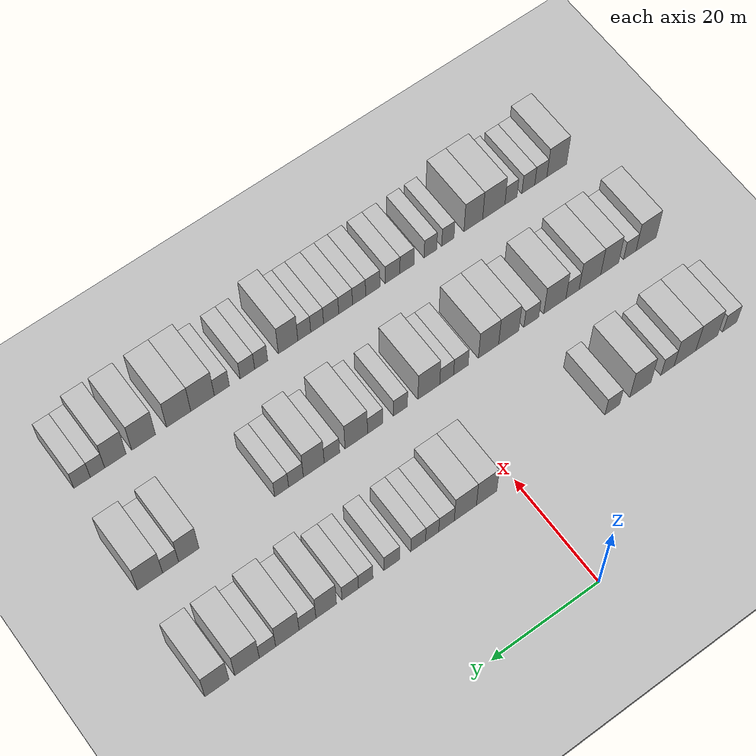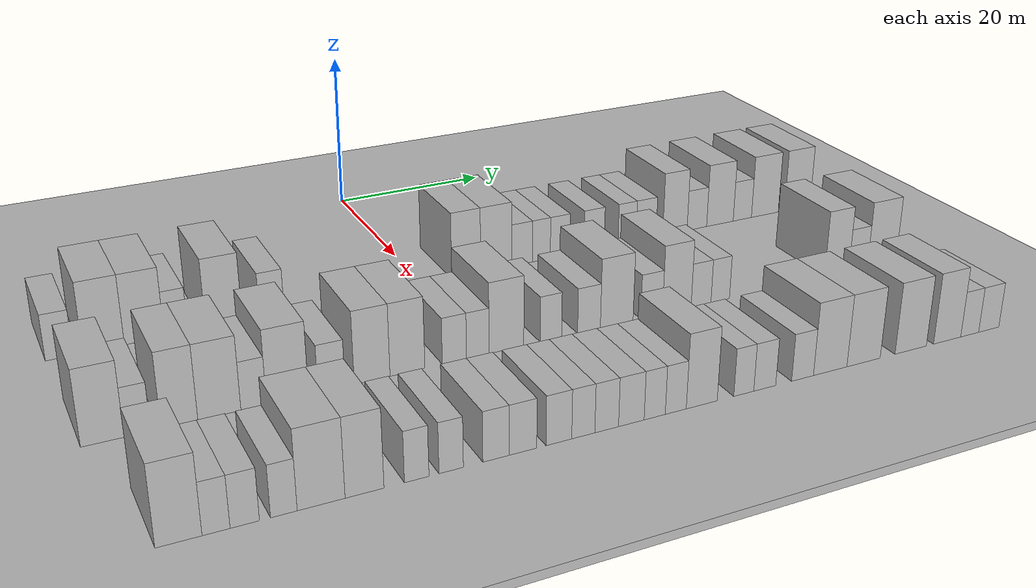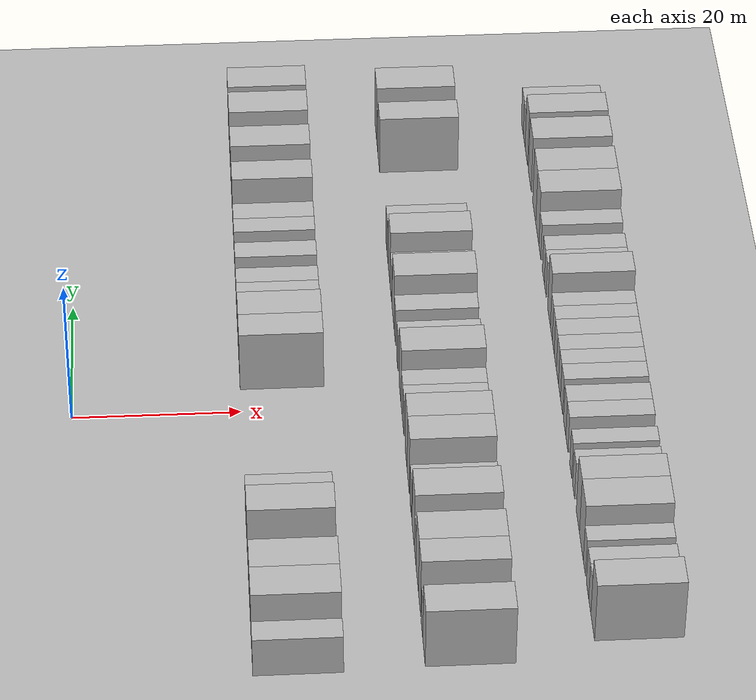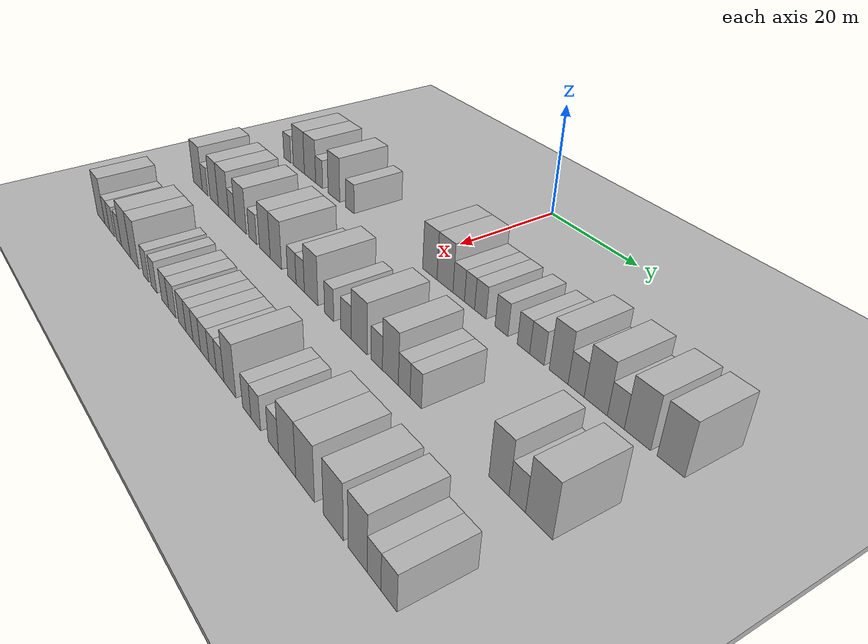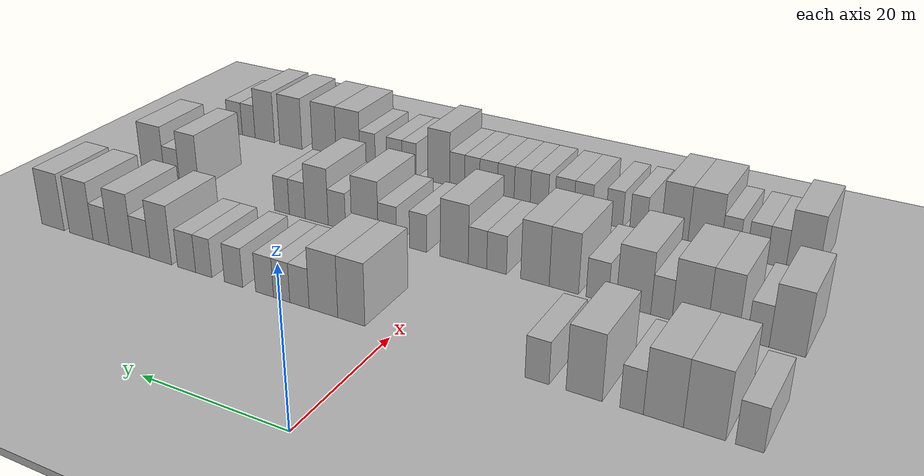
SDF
<sdf version="1.6">
 <world name="default">
  <include><name>ground_plane_1</name><uri>model://HANNAS_ground_plane</uri></include>
  <include>
   <name>ground_plane_2</name>
   <uri>model://HANNAS_ground_plane</uri>
   <pose>100 0 0  0 0 0</pose>
  </include>
  <model name="building_51">
   <static>1</static>
   <pose>25.0000 -42.3913 0 0.000000 0.000000 0.000000</pose>
   <link name="link">
    <pose>0 0 3.00 0 0 0</pose>
    <collision name="collision"><geometry><box><size>10.0000 2.9207 6.0000</size></box></geometry></collision>
    <visual name="visual">
     <cast_shadows>0</cast_shadows>
     <geometry><box><size>10.0000 2.9207 6.0000</size></box></geometry>
     <material>
      <script>
       <uri>model://HANNAS_wall/materials/scripts</uri>
       <uri>model://HANNAS_wall/materials/textures</uri>
       <name>vrc/HANNAS_wall</name>
      </script>
     </material>
    </visual>
   </link>
  </model>
  <model name="building_52">
   <static>1</static>
   <pose>25.0000 -37.7059 0 0.000000 0.000000 0.000000</pose>
   <link name="link">
    <pose>0 0 4.50 0 0 0</pose>
    <collision name="collision"><geometry><box><size>10.0000 4.4499 9.0000</size></box></geometry></collision>
    <visual name="visual">
     <cast_shadows>0</cast_shadows>
     <geometry><box><size>10.0000 4.4499 9.0000</size></box></geometry>
     <material>
      <script>
       <uri>model://HANNAS_wall/materials/scripts</uri>
       <uri>model://HANNAS_wall/materials/textures</uri>
       <name>vrc/HANNAS_wall</name>
      </script>
     </material>
    </visual>
   </link>
  </model>
  <model name="building_53">
   <static>1</static>
   <pose>25.0000 -33.2970 0 0.000000 0.000000 0.000000</pose>
   <link name="link">
    <pose>0 0 4.50 0 0 0</pose>
    <collision name="collision"><geometry><box><size>10.0000 4.3680 9.0000</size></box></geometry></collision>
    <visual name="visual">
     <cast_shadows>0</cast_shadows>
     <geometry><box><size>10.0000 4.3680 9.0000</size></box></geometry>
     <material>
      <script>
       <uri>model://HANNAS_wall/materials/scripts</uri>
       <uri>model://HANNAS_wall/materials/textures</uri>
       <name>vrc/HANNAS_wall</name>
      </script>
     </material>
    </visual>
   </link>
  </model>
  <model name="building_54">
   <static>1</static>
   <pose>25.0000 -29.8048 0 0.000000 0.000000 0.000000</pose>
   <link name="link">
    <pose>0 0 3.00 0 0 0</pose>
    <collision name="collision"><geometry><box><size>10.0000 2.6163 6.0000</size></box></geometry></collision>
    <visual name="visual">
     <cast_shadows>0</cast_shadows>
     <geometry><box><size>10.0000 2.6163 6.0000</size></box></geometry>
     <material>
      <script>
       <uri>model://HANNAS_wall/materials/scripts</uri>
       <uri>model://HANNAS_wall/materials/textures</uri>
       <name>vrc/HANNAS_wall</name>
      </script>
     </material>
    </visual>
   </link>
  </model>
  <model name="building_55">
   <static>1</static>
   <pose>25.0000 -24.4021 0 0.000000 0.000000 0.000000</pose>
   <link name="link">
    <pose>0 0 4.50 0 0 0</pose>
    <collision name="collision"><geometry><box><size>10.0000 4.1892 9.0000</size></box></geometry></collision>
    <visual name="visual">
     <cast_shadows>0</cast_shadows>
     <geometry><box><size>10.0000 4.1892 9.0000</size></box></geometry>
     <material>
      <script>
       <uri>model://HANNAS_wall/materials/scripts</uri>
       <uri>model://HANNAS_wall/materials/textures</uri>
       <name>vrc/HANNAS_wall</name>
      </script>
     </material>
    </visual>
   </link>
  </model>
  <model name="building_56">
   <static>1</static>
   <pose>25.0000 -18.8573 0 0.000000 0.000000 0.000000</pose>
   <link name="link">
    <pose>0 0 3.00 0 0 0</pose>
    <collision name="collision"><geometry><box><size>10.0000 2.9004 6.0000</size></box></geometry></collision>
    <visual name="visual">
     <cast_shadows>0</cast_shadows>
     <geometry><box><size>10.0000 2.9004 6.0000</size></box></geometry>
     <material>
      <script>
       <uri>model://HANNAS_wall/materials/scripts</uri>
       <uri>model://HANNAS_wall/materials/textures</uri>
       <name>vrc/HANNAS_wall</name>
      </script>
     </material>
    </visual>
   </link>
  </model>
  <model name="building_57">
   <static>1</static>
   <pose>25.0000 5.3431 0 0.000000 0.000000 0.000000</pose>
   <link name="link">
    <pose>0 0 4.50 0 0 0</pose>
    <collision name="collision"><geometry><box><size>10.0000 3.8335 9.0000</size></box></geometry></collision>
    <visual name="visual">
     <cast_shadows>0</cast_shadows>
     <geometry><box><size>10.0000 3.8335 9.0000</size></box></geometry>
     <material>
      <script>
       <uri>model://HANNAS_wall/materials/scripts</uri>
       <uri>model://HANNAS_wall/materials/textures</uri>
       <name>vrc/HANNAS_wall</name>
      </script>
     </material>
    </visual>
   </link>
  </model>
  <model name="building_58">
   <static>1</static>
   <pose>25.0000 9.3319 0 0.000000 0.000000 0.000000</pose>
   <link name="link">
    <pose>0 0 4.50 0 0 0</pose>
    <collision name="collision"><geometry><box><size>10.0000 4.1440 9.0000</size></box></geometry></collision>
    <visual name="visual">
     <cast_shadows>0</cast_shadows>
     <geometry><box><size>10.0000 4.1440 9.0000</size></box></geometry>
     <material>
      <script>
       <uri>model://HANNAS_wall/materials/scripts</uri>
       <uri>model://HANNAS_wall/materials/textures</uri>
       <name>vrc/HANNAS_wall</name>
      </script>
     </material>
    </visual>
   </link>
  </model>
  <model name="building_59">
   <static>1</static>
   <pose>25.0000 12.8357 0 0.000000 0.000000 0.000000</pose>
   <link name="link">
    <pose>0 0 3.00 0 0 0</pose>
    <collision name="collision"><geometry><box><size>10.0000 2.8636 6.0000</size></box></geometry></collision>
    <visual name="visual">
     <cast_shadows>0</cast_shadows>
     <geometry><box><size>10.0000 2.8636 6.0000</size></box></geometry>
     <material>
      <script>
       <uri>model://HANNAS_wall/materials/scripts</uri>
       <uri>model://HANNAS_wall/materials/textures</uri>
       <name>vrc/HANNAS_wall</name>
      </script>
     </material>
    </visual>
   </link>
  </model>
  <model name="building_60">
   <static>1</static>
   <pose>25.0000 15.4938 0 0.000000 0.000000 0.000000</pose>
   <link name="link">
    <pose>0 0 3.00 0 0 0</pose>
    <collision name="collision"><geometry><box><size>10.0000 2.4527 6.0000</size></box></geometry></collision>
    <visual name="visual">
     <cast_shadows>0</cast_shadows>
     <geometry><box><size>10.0000 2.4527 6.0000</size></box></geometry>
     <material>
      <script>
       <uri>model://HANNAS_wall/materials/scripts</uri>
       <uri>model://HANNAS_wall/materials/textures</uri>
       <name>vrc/HANNAS_wall</name>
      </script>
     </material>
    </visual>
   </link>
  </model>
  <model name="building_61">
   <static>1</static>
   <pose>25.0000 18.0873 0 0.000000 0.000000 0.000000</pose>
   <link name="link">
    <pose>0 0 3.00 0 0 0</pose>
    <collision name="collision"><geometry><box><size>10.0000 2.7342 6.0000</size></box></geometry></collision>
    <visual name="visual">
     <cast_shadows>0</cast_shadows>
     <geometry><box><size>10.0000 2.7342 6.0000</size></box></geometry>
     <material>
      <script>
       <uri>model://HANNAS_wall/materials/scripts</uri>
       <uri>model://HANNAS_wall/materials/textures</uri>
       <name>vrc/HANNAS_wall</name>
      </script>
     </material>
    </visual>
   </link>
  </model>
  <model name="building_62">
   <static>1</static>
   <pose>25.0000 22.8977 0 0.000000 0.000000 0.000000</pose>
   <link name="link">
    <pose>0 0 3.00 0 0 0</pose>
    <collision name="collision"><geometry><box><size>10.0000 2.8866 6.0000</size></box></geometry></collision>
    <visual name="visual">
     <cast_shadows>0</cast_shadows>
     <geometry><box><size>10.0000 2.8866 6.0000</size></box></geometry>
     <material>
      <script>
       <uri>model://HANNAS_wall/materials/scripts</uri>
       <uri>model://HANNAS_wall/materials/textures</uri>
       <name>vrc/HANNAS_wall</name>
      </script>
     </material>
    </visual>
   </link>
  </model>
  <model name="building_63">
   <static>1</static>
   <pose>25.0000 27.6542 0 0.000000 0.000000 0.000000</pose>
   <link name="link">
    <pose>0 0 3.00 0 0 0</pose>
    <collision name="collision"><geometry><box><size>10.0000 2.6263 6.0000</size></box></geometry></collision>
    <visual name="visual">
     <cast_shadows>0</cast_shadows>
     <geometry><box><size>10.0000 2.6263 6.0000</size></box></geometry>
     <material>
      <script>
       <uri>model://HANNAS_wall/materials/scripts</uri>
       <uri>model://HANNAS_wall/materials/textures</uri>
       <name>vrc/HANNAS_wall</name>
      </script>
     </material>
    </visual>
   </link>
  </model>
  <model name="building_64">
   <static>1</static>
   <pose>25.0000 30.4473 0 0.000000 0.000000 0.000000</pose>
   <link name="link">
    <pose>0 0 3.00 0 0 0</pose>
    <collision name="collision"><geometry><box><size>10.0000 2.9599 6.0000</size></box></geometry></collision>
    <visual name="visual">
     <cast_shadows>0</cast_shadows>
     <geometry><box><size>10.0000 2.9599 6.0000</size></box></geometry>
     <material>
      <script>
       <uri>model://HANNAS_wall/materials/scripts</uri>
       <uri>model://HANNAS_wall/materials/textures</uri>
       <name>vrc/HANNAS_wall</name>
      </script>
     </material>
    </visual>
   </link>
  </model>
  <model name="building_65">
   <static>1</static>
   <pose>25.0000 34.7578 0 0.000000 0.000000 0.000000</pose>
   <link name="link">
    <pose>0 0 4.50 0 0 0</pose>
    <collision name="collision"><geometry><box><size>10.0000 3.6612 9.0000</size></box></geometry></collision>
    <visual name="visual">
     <cast_shadows>0</cast_shadows>
     <geometry><box><size>10.0000 3.6612 9.0000</size></box></geometry>
     <material>
      <script>
       <uri>model://HANNAS_wall/materials/scripts</uri>
       <uri>model://HANNAS_wall/materials/textures</uri>
       <name>vrc/HANNAS_wall</name>
      </script>
     </material>
    </visual>
   </link>
  </model>
  <model name="building_66">
   <static>1</static>
   <pose>25.0000 38.0858 0 0.000000 0.000000 0.000000</pose>
   <link name="link">
    <pose>0 0 3.00 0 0 0</pose>
    <collision name="collision"><geometry><box><size>10.0000 2.9948 6.0000</size></box></geometry></collision>
    <visual name="visual">
     <cast_shadows>0</cast_shadows>
     <geometry><box><size>10.0000 2.9948 6.0000</size></box></geometry>
     <material>
      <script>
       <uri>model://HANNAS_wall/materials/scripts</uri>
       <uri>model://HANNAS_wall/materials/textures</uri>
       <name>vrc/HANNAS_wall</name>
      </script>
     </material>
    </visual>
   </link>
  </model>
  <model name="building_67">
   <static>1</static>
   <pose>25.0000 41.6446 0 0.000000 0.000000 0.000000</pose>
   <link name="link">
    <pose>0 0 4.50 0 0 0</pose>
    <collision name="collision"><geometry><box><size>10.0000 4.1228 9.0000</size></box></geometry></collision>
    <visual name="visual">
     <cast_shadows>0</cast_shadows>
     <geometry><box><size>10.0000 4.1228 9.0000</size></box></geometry>
     <material>
      <script>
       <uri>model://HANNAS_wall/materials/scripts</uri>
       <uri>model://HANNAS_wall/materials/textures</uri>
       <name>vrc/HANNAS_wall</name>
      </script>
     </material>
    </visual>
   </link>
  </model>
  <model name="building_68">
   <static>1</static>
   <pose>25.0000 45.1408 0 0.000000 0.000000 0.000000</pose>
   <link name="link">
    <pose>0 0 3.00 0 0 0</pose>
    <collision name="collision"><geometry><box><size>10.0000 2.8695 6.0000</size></box></geometry></collision>
    <visual name="visual">
     <cast_shadows>0</cast_shadows>
     <geometry><box><size>10.0000 2.8695 6.0000</size></box></geometry>
     <material>
      <script>
       <uri>model://HANNAS_wall/materials/scripts</uri>
       <uri>model://HANNAS_wall/materials/textures</uri>
       <name>vrc/HANNAS_wall</name>
      </script>
     </material>
    </visual>
   </link>
  </model>
  <model name="building_69">
   <static>1</static>
   <pose>25.0000 48.7208 0 0.000000 0.000000 0.000000</pose>
   <link name="link">
    <pose>0 0 4.50 0 0 0</pose>
    <collision name="collision"><geometry><box><size>10.0000 4.2906 9.0000</size></box></geometry></collision>
    <visual name="visual">
     <cast_shadows>0</cast_shadows>
     <geometry><box><size>10.0000 4.2906 9.0000</size></box></geometry>
     <material>
      <script>
       <uri>model://HANNAS_wall/materials/scripts</uri>
       <uri>model://HANNAS_wall/materials/textures</uri>
       <name>vrc/HANNAS_wall</name>
      </script>
     </material>
    </visual>
   </link>
  </model>
  <model name="building_70">
   <static>1</static>
   <pose>25.0000 53.9550 0 0.000000 0.000000 0.000000</pose>
   <link name="link">
    <pose>0 0 4.50 0 0 0</pose>
    <collision name="collision"><geometry><box><size>10.0000 4.1778 9.0000</size></box></geometry></collision>
    <visual name="visual">
     <cast_shadows>0</cast_shadows>
     <geometry><box><size>10.0000 4.1778 9.0000</size></box></geometry>
     <material>
      <script>
       <uri>model://HANNAS_wall/materials/scripts</uri>
       <uri>model://HANNAS_wall/materials/textures</uri>
       <name>vrc/HANNAS_wall</name>
      </script>
     </material>
    </visual>
   </link>
  </model>
  <model name="building_160">
   <static>1</static>
   <pose>44.0000 -41.3735 0 0.000000 0.000000 0.000000</pose>
   <link name="link">
    <pose>0 0 4.50 0 0 0</pose>
    <collision name="collision"><geometry><box><size>10.0000 4.1638 9.0000</size></box></geometry></collision>
    <visual name="visual">
     <cast_shadows>0</cast_shadows>
     <geometry><box><size>10.0000 4.1638 9.0000</size></box></geometry>
     <material>
      <script>
       <uri>model://HANNAS_wall/materials/scripts</uri>
       <uri>model://HANNAS_wall/materials/textures</uri>
       <name>vrc/HANNAS_wall</name>
      </script>
     </material>
    </visual>
   </link>
  </model>
  <model name="building_161">
   <static>1</static>
   <pose>44.0000 -38.0112 0 0.000000 0.000000 0.000000</pose>
   <link name="link">
    <pose>0 0 3.00 0 0 0</pose>
    <collision name="collision"><geometry><box><size>10.0000 2.5609 6.0000</size></box></geometry></collision>
    <visual name="visual">
     <cast_shadows>0</cast_shadows>
     <geometry><box><size>10.0000 2.5609 6.0000</size></box></geometry>
     <material>
      <script>
       <uri>model://HANNAS_wall/materials/scripts</uri>
       <uri>model://HANNAS_wall/materials/textures</uri>
       <name>vrc/HANNAS_wall</name>
      </script>
     </material>
    </visual>
   </link>
  </model>
  <model name="building_162">
   <static>1</static>
   <pose>44.0000 -33.9057 0 0.000000 0.000000 0.000000</pose>
   <link name="link">
    <pose>0 0 4.50 0 0 0</pose>
    <collision name="collision"><geometry><box><size>10.0000 3.6501 9.0000</size></box></geometry></collision>
    <visual name="visual">
     <cast_shadows>0</cast_shadows>
     <geometry><box><size>10.0000 3.6501 9.0000</size></box></geometry>
     <material>
      <script>
       <uri>model://HANNAS_wall/materials/scripts</uri>
       <uri>model://HANNAS_wall/materials/textures</uri>
       <name>vrc/HANNAS_wall</name>
      </script>
     </material>
    </visual>
   </link>
  </model>
  <model name="building_163">
   <static>1</static>
   <pose>44.0000 -29.8996 0 0.000000 0.000000 0.000000</pose>
   <link name="link">
    <pose>0 0 4.50 0 0 0</pose>
    <collision name="collision"><geometry><box><size>10.0000 4.3619 9.0000</size></box></geometry></collision>
    <visual name="visual">
     <cast_shadows>0</cast_shadows>
     <geometry><box><size>10.0000 4.3619 9.0000</size></box></geometry>
     <material>
      <script>
       <uri>model://HANNAS_wall/materials/scripts</uri>
       <uri>model://HANNAS_wall/materials/textures</uri>
       <name>vrc/HANNAS_wall</name>
      </script>
     </material>
    </visual>
   </link>
  </model>
  <model name="building_164">
   <static>1</static>
   <pose>44.0000 -26.3938 0 0.000000 0.000000 0.000000</pose>
   <link name="link">
    <pose>0 0 3.00 0 0 0</pose>
    <collision name="collision"><geometry><box><size>10.0000 2.6497 6.0000</size></box></geometry></collision>
    <visual name="visual">
     <cast_shadows>0</cast_shadows>
     <geometry><box><size>10.0000 2.6497 6.0000</size></box></geometry>
     <material>
      <script>
       <uri>model://HANNAS_wall/materials/scripts</uri>
       <uri>model://HANNAS_wall/materials/textures</uri>
       <name>vrc/HANNAS_wall</name>
      </script>
     </material>
    </visual>
   </link>
  </model>
  <model name="building_165">
   <static>1</static>
   <pose>44.0000 -22.8585 0 0.000000 0.000000 0.000000</pose>
   <link name="link">
    <pose>0 0 4.50 0 0 0</pose>
    <collision name="collision"><geometry><box><size>10.0000 4.4208 9.0000</size></box></geometry></collision>
    <visual name="visual">
     <cast_shadows>0</cast_shadows>
     <geometry><box><size>10.0000 4.4208 9.0000</size></box></geometry>
     <material>
      <script>
       <uri>model://HANNAS_wall/materials/scripts</uri>
       <uri>model://HANNAS_wall/materials/textures</uri>
       <name>vrc/HANNAS_wall</name>
      </script>
     </material>
    </visual>
   </link>
  </model>
  <model name="building_166">
   <static>1</static>
   <pose>44.0000 -18.1821 0 0.000000 0.000000 0.000000</pose>
   <link name="link">
    <pose>0 0 3.00 0 0 0</pose>
    <collision name="collision"><geometry><box><size>10.0000 2.9320 6.0000</size></box></geometry></collision>
    <visual name="visual">
     <cast_shadows>0</cast_shadows>
     <geometry><box><size>10.0000 2.9320 6.0000</size></box></geometry>
     <material>
      <script>
       <uri>model://HANNAS_wall/materials/scripts</uri>
       <uri>model://HANNAS_wall/materials/textures</uri>
       <name>vrc/HANNAS_wall</name>
      </script>
     </material>
    </visual>
   </link>
  </model>
  <model name="building_167">
   <static>1</static>
   <pose>44.0000 -13.7350 0 0.000000 0.000000 0.000000</pose>
   <link name="link">
    <pose>0 0 4.50 0 0 0</pose>
    <collision name="collision"><geometry><box><size>10.0000 3.9623 9.0000</size></box></geometry></collision>
    <visual name="visual">
     <cast_shadows>0</cast_shadows>
     <geometry><box><size>10.0000 3.9623 9.0000</size></box></geometry>
     <material>
      <script>
       <uri>model://HANNAS_wall/materials/scripts</uri>
       <uri>model://HANNAS_wall/materials/textures</uri>
       <name>vrc/HANNAS_wall</name>
      </script>
     </material>
    </visual>
   </link>
  </model>
  <model name="building_168">
   <static>1</static>
   <pose>44.0000 -9.7840 0 0.000000 0.000000 0.000000</pose>
   <link name="link">
    <pose>0 0 4.50 0 0 0</pose>
    <collision name="collision"><geometry><box><size>10.0000 3.9397 9.0000</size></box></geometry></collision>
    <visual name="visual">
     <cast_shadows>0</cast_shadows>
     <geometry><box><size>10.0000 3.9397 9.0000</size></box></geometry>
     <material>
      <script>
       <uri>model://HANNAS_wall/materials/scripts</uri>
       <uri>model://HANNAS_wall/materials/textures</uri>
       <name>vrc/HANNAS_wall</name>
      </script>
     </material>
    </visual>
   </link>
  </model>
  <model name="building_169">
   <static>1</static>
   <pose>44.0000 -4.4063 0 0.000000 0.000000 0.000000</pose>
   <link name="link">
    <pose>0 0 3.00 0 0 0</pose>
    <collision name="collision"><geometry><box><size>10.0000 2.8156 6.0000</size></box></geometry></collision>
    <visual name="visual">
     <cast_shadows>0</cast_shadows>
     <geometry><box><size>10.0000 2.8156 6.0000</size></box></geometry>
     <material>
      <script>
       <uri>model://HANNAS_wall/materials/scripts</uri>
       <uri>model://HANNAS_wall/materials/textures</uri>
       <name>vrc/HANNAS_wall</name>
      </script>
     </material>
    </visual>
   </link>
  </model>
  <model name="building_170">
   <static>1</static>
   <pose>44.0000 -1.6657 0 0.000000 0.000000 0.000000</pose>
   <link name="link">
    <pose>0 0 3.00 0 0 0</pose>
    <collision name="collision"><geometry><box><size>10.0000 2.6657 6.0000</size></box></geometry></collision>
    <visual name="visual">
     <cast_shadows>0</cast_shadows>
     <geometry><box><size>10.0000 2.6657 6.0000</size></box></geometry>
     <material>
      <script>
       <uri>model://HANNAS_wall/materials/scripts</uri>
       <uri>model://HANNAS_wall/materials/textures</uri>
       <name>vrc/HANNAS_wall</name>
      </script>
     </material>
    </visual>
   </link>
  </model>
  <model name="building_171">
   <static>1</static>
   <pose>44.0000 1.7491 0 0.000000 0.000000 0.000000</pose>
   <link name="link">
    <pose>0 0 4.50 0 0 0</pose>
    <collision name="collision"><geometry><box><size>10.0000 4.1638 9.0000</size></box></geometry></collision>
    <visual name="visual">
     <cast_shadows>0</cast_shadows>
     <geometry><box><size>10.0000 4.1638 9.0000</size></box></geometry>
     <material>
      <script>
       <uri>model://HANNAS_wall/materials/scripts</uri>
       <uri>model://HANNAS_wall/materials/textures</uri>
       <name>vrc/HANNAS_wall</name>
      </script>
     </material>
    </visual>
   </link>
  </model>
  <model name="building_172">
   <static>1</static>
   <pose>44.0000 7.1527 0 0.000000 0.000000 0.000000</pose>
   <link name="link">
    <pose>0 0 3.00 0 0 0</pose>
    <collision name="collision"><geometry><box><size>10.0000 2.6434 6.0000</size></box></geometry></collision>
    <visual name="visual">
     <cast_shadows>0</cast_shadows>
     <geometry><box><size>10.0000 2.6434 6.0000</size></box></geometry>
     <material>
      <script>
       <uri>model://HANNAS_wall/materials/scripts</uri>
       <uri>model://HANNAS_wall/materials/textures</uri>
       <name>vrc/HANNAS_wall</name>
      </script>
     </material>
    </visual>
   </link>
  </model>
  <model name="building_173">
   <static>1</static>
   <pose>44.0000 11.9162 0 0.000000 0.000000 0.000000</pose>
   <link name="link">
    <pose>0 0 3.00 0 0 0</pose>
    <collision name="collision"><geometry><box><size>10.0000 2.8835 6.0000</size></box></geometry></collision>
    <visual name="visual">
     <cast_shadows>0</cast_shadows>
     <geometry><box><size>10.0000 2.8835 6.0000</size></box></geometry>
     <material>
      <script>
       <uri>model://HANNAS_wall/materials/scripts</uri>
       <uri>model://HANNAS_wall/materials/textures</uri>
       <name>vrc/HANNAS_wall</name>
      </script>
     </material>
    </visual>
   </link>
  </model>
  <model name="building_174">
   <static>1</static>
   <pose>44.0000 15.4622 0 0.000000 0.000000 0.000000</pose>
   <link name="link">
    <pose>0 0 4.50 0 0 0</pose>
    <collision name="collision"><geometry><box><size>10.0000 4.2085 9.0000</size></box></geometry></collision>
    <visual name="visual">
     <cast_shadows>0</cast_shadows>
     <geometry><box><size>10.0000 4.2085 9.0000</size></box></geometry>
     <material>
      <script>
       <uri>model://HANNAS_wall/materials/scripts</uri>
       <uri>model://HANNAS_wall/materials/textures</uri>
       <name>vrc/HANNAS_wall</name>
      </script>
     </material>
    </visual>
   </link>
  </model>
  <model name="building_175">
   <static>1</static>
   <pose>44.0000 19.9967 0 0.000000 0.000000 0.000000</pose>
   <link name="link">
    <pose>0 0 3.00 0 0 0</pose>
    <collision name="collision"><geometry><box><size>10.0000 2.8606 6.0000</size></box></geometry></collision>
    <visual name="visual">
     <cast_shadows>0</cast_shadows>
     <geometry><box><size>10.0000 2.8606 6.0000</size></box></geometry>
     <material>
      <script>
       <uri>model://HANNAS_wall/materials/scripts</uri>
       <uri>model://HANNAS_wall/materials/textures</uri>
       <name>vrc/HANNAS_wall</name>
      </script>
     </material>
    </visual>
   </link>
  </model>
  <model name="building_176">
   <static>1</static>
   <pose>44.0000 23.3450 0 0.000000 0.000000 0.000000</pose>
   <link name="link">
    <pose>0 0 4.50 0 0 0</pose>
    <collision name="collision"><geometry><box><size>10.0000 3.8359 9.0000</size></box></geometry></collision>
    <visual name="visual">
     <cast_shadows>0</cast_shadows>
     <geometry><box><size>10.0000 3.8359 9.0000</size></box></geometry>
     <material>
      <script>
       <uri>model://HANNAS_wall/materials/scripts</uri>
       <uri>model://HANNAS_wall/materials/textures</uri>
       <name>vrc/HANNAS_wall</name>
      </script>
     </material>
    </visual>
   </link>
  </model>
  <model name="building_177">
   <static>1</static>
   <pose>44.0000 26.6130 0 0.000000 0.000000 0.000000</pose>
   <link name="link">
    <pose>0 0 3.00 0 0 0</pose>
    <collision name="collision"><geometry><box><size>10.0000 2.7003 6.0000</size></box></geometry></collision>
    <visual name="visual">
     <cast_shadows>0</cast_shadows>
     <geometry><box><size>10.0000 2.7003 6.0000</size></box></geometry>
     <material>
      <script>
       <uri>model://HANNAS_wall/materials/scripts</uri>
       <uri>model://HANNAS_wall/materials/textures</uri>
       <name>vrc/HANNAS_wall</name>
      </script>
     </material>
    </visual>
   </link>
  </model>
  <model name="building_178">
   <static>1</static>
   <pose>44.0000 29.2371 0 0.000000 0.000000 0.000000</pose>
   <link name="link">
    <pose>0 0 3.00 0 0 0</pose>
    <collision name="collision"><geometry><box><size>10.0000 2.5479 6.0000</size></box></geometry></collision>
    <visual name="visual">
     <cast_shadows>0</cast_shadows>
     <geometry><box><size>10.0000 2.5479 6.0000</size></box></geometry>
     <material>
      <script>
       <uri>model://HANNAS_wall/materials/scripts</uri>
       <uri>model://HANNAS_wall/materials/textures</uri>
       <name>vrc/HANNAS_wall</name>
      </script>
     </material>
    </visual>
   </link>
  </model>
  <model name="building_179">
   <static>1</static>
   <pose>44.0000 45.9286 0 0.000000 0.000000 0.000000</pose>
   <link name="link">
    <pose>0 0 4.50 0 0 0</pose>
    <collision name="collision"><geometry><box><size>10.0000 3.6117 9.0000</size></box></geometry></collision>
    <visual name="visual">
     <cast_shadows>0</cast_shadows>
     <geometry><box><size>10.0000 3.6117 9.0000</size></box></geometry>
     <material>
      <script>
       <uri>model://HANNAS_wall/materials/scripts</uri>
       <uri>model://HANNAS_wall/materials/textures</uri>
       <name>vrc/HANNAS_wall</name>
      </script>
     </material>
    </visual>
   </link>
  </model>
  <model name="building_180">
   <static>1</static>
   <pose>44.0000 49.1493 0 0.000000 0.000000 0.000000</pose>
   <link name="link">
    <pose>0 0 3.00 0 0 0</pose>
    <collision name="collision"><geometry><box><size>10.0000 2.8298 6.0000</size></box></geometry></collision>
    <visual name="visual">
     <cast_shadows>0</cast_shadows>
     <geometry><box><size>10.0000 2.8298 6.0000</size></box></geometry>
     <material>
      <script>
       <uri>model://HANNAS_wall/materials/scripts</uri>
       <uri>model://HANNAS_wall/materials/textures</uri>
       <name>vrc/HANNAS_wall</name>
      </script>
     </material>
    </visual>
   </link>
  </model>
  <model name="building_181">
   <static>1</static>
   <pose>44.0000 52.7676 0 0.000000 0.000000 0.000000</pose>
   <link name="link">
    <pose>0 0 4.50 0 0 0</pose>
    <collision name="collision"><geometry><box><size>10.0000 4.4067 9.0000</size></box></geometry></collision>
    <visual name="visual">
     <cast_shadows>0</cast_shadows>
     <geometry><box><size>10.0000 4.4067 9.0000</size></box></geometry>
     <material>
      <script>
       <uri>model://HANNAS_wall/materials/scripts</uri>
       <uri>model://HANNAS_wall/materials/textures</uri>
       <name>vrc/HANNAS_wall</name>
      </script>
     </material>
    </visual>
   </link>
  </model>
  <model name="building_270">
   <static>1</static>
   <pose>63.0000 -38.4650 0 0.000000 0.000000 0.000000</pose>
   <link name="link">
    <pose>0 0 4.50 0 0 0</pose>
    <collision name="collision"><geometry><box><size>10.0000 4.0816 9.0000</size></box></geometry></collision>
    <visual name="visual">
     <cast_shadows>0</cast_shadows>
     <geometry><box><size>10.0000 4.0816 9.0000</size></box></geometry>
     <material>
      <script>
       <uri>model://HANNAS_wall/materials/scripts</uri>
       <uri>model://HANNAS_wall/materials/textures</uri>
       <name>vrc/HANNAS_wall</name>
      </script>
     </material>
    </visual>
   </link>
  </model>
  <model name="building_271">
   <static>1</static>
   <pose>63.0000 -35.1843 0 0.000000 0.000000 0.000000</pose>
   <link name="link">
    <pose>0 0 3.00 0 0 0</pose>
    <collision name="collision"><geometry><box><size>10.0000 2.4797 6.0000</size></box></geometry></collision>
    <visual name="visual">
     <cast_shadows>0</cast_shadows>
     <geometry><box><size>10.0000 2.4797 6.0000</size></box></geometry>
     <material>
      <script>
       <uri>model://HANNAS_wall/materials/scripts</uri>
       <uri>model://HANNAS_wall/materials/textures</uri>
       <name>vrc/HANNAS_wall</name>
      </script>
     </material>
    </visual>
   </link>
  </model>
  <model name="building_272">
   <static>1</static>
   <pose>63.0000 -32.6250 0 0.000000 0.000000 0.000000</pose>
   <link name="link">
    <pose>0 0 3.00 0 0 0</pose>
    <collision name="collision"><geometry><box><size>10.0000 2.6390 6.0000</size></box></geometry></collision>
    <visual name="visual">
     <cast_shadows>0</cast_shadows>
     <geometry><box><size>10.0000 2.6390 6.0000</size></box></geometry>
     <material>
      <script>
       <uri>model://HANNAS_wall/materials/scripts</uri>
       <uri>model://HANNAS_wall/materials/textures</uri>
       <name>vrc/HANNAS_wall</name>
      </script>
     </material>
    </visual>
   </link>
  </model>
  <model name="building_273">
   <static>1</static>
   <pose>63.0000 -29.0789 0 0.000000 0.000000 0.000000</pose>
   <link name="link">
    <pose>0 0 3.00 0 0 0</pose>
    <collision name="collision"><geometry><box><size>10.0000 2.4532 6.0000</size></box></geometry></collision>
    <visual name="visual">
     <cast_shadows>0</cast_shadows>
     <geometry><box><size>10.0000 2.4532 6.0000</size></box></geometry>
     <material>
      <script>
       <uri>model://HANNAS_wall/materials/scripts</uri>
       <uri>model://HANNAS_wall/materials/textures</uri>
       <name>vrc/HANNAS_wall</name>
      </script>
     </material>
    </visual>
   </link>
  </model>
  <model name="building_274">
   <static>1</static>
   <pose>63.0000 -25.6056 0 0.000000 0.000000 0.000000</pose>
   <link name="link">
    <pose>0 0 4.50 0 0 0</pose>
    <collision name="collision"><geometry><box><size>10.0000 4.4934 9.0000</size></box></geometry></collision>
    <visual name="visual">
     <cast_shadows>0</cast_shadows>
     <geometry><box><size>10.0000 4.4934 9.0000</size></box></geometry>
     <material>
      <script>
       <uri>model://HANNAS_wall/materials/scripts</uri>
       <uri>model://HANNAS_wall/materials/textures</uri>
       <name>vrc/HANNAS_wall</name>
      </script>
     </material>
    </visual>
   </link>
  </model>
  <model name="building_275">
   <static>1</static>
   <pose>63.0000 -21.4857 0 0.000000 0.000000 0.000000</pose>
   <link name="link">
    <pose>0 0 4.50 0 0 0</pose>
    <collision name="collision"><geometry><box><size>10.0000 3.7465 9.0000</size></box></geometry></collision>
    <visual name="visual">
     <cast_shadows>0</cast_shadows>
     <geometry><box><size>10.0000 3.7465 9.0000</size></box></geometry>
     <material>
      <script>
       <uri>model://HANNAS_wall/materials/scripts</uri>
       <uri>model://HANNAS_wall/materials/textures</uri>
       <name>vrc/HANNAS_wall</name>
      </script>
     </material>
    </visual>
   </link>
  </model>
  <model name="building_276">
   <static>1</static>
   <pose>63.0000 -16.3913 0 0.000000 0.000000 0.000000</pose>
   <link name="link">
    <pose>0 0 3.00 0 0 0</pose>
    <collision name="collision"><geometry><box><size>10.0000 2.4422 6.0000</size></box></geometry></collision>
    <visual name="visual">
     <cast_shadows>0</cast_shadows>
     <geometry><box><size>10.0000 2.4422 6.0000</size></box></geometry>
     <material>
      <script>
       <uri>model://HANNAS_wall/materials/scripts</uri>
       <uri>model://HANNAS_wall/materials/textures</uri>
       <name>vrc/HANNAS_wall</name>
      </script>
     </material>
    </visual>
   </link>
  </model>
  <model name="building_277">
   <static>1</static>
   <pose>63.0000 -12.9306 0 0.000000 0.000000 0.000000</pose>
   <link name="link">
    <pose>0 0 3.00 0 0 0</pose>
    <collision name="collision"><geometry><box><size>10.0000 2.4792 6.0000</size></box></geometry></collision>
    <visual name="visual">
     <cast_shadows>0</cast_shadows>
     <geometry><box><size>10.0000 2.4792 6.0000</size></box></geometry>
     <material>
      <script>
       <uri>model://HANNAS_wall/materials/scripts</uri>
       <uri>model://HANNAS_wall/materials/textures</uri>
       <name>vrc/HANNAS_wall</name>
      </script>
     </material>
    </visual>
   </link>
  </model>
  <model name="building_278">
   <static>1</static>
   <pose>63.0000 -8.3060 0 0.000000 0.000000 0.000000</pose>
   <link name="link">
    <pose>0 0 3.00 0 0 0</pose>
    <collision name="collision"><geometry><box><size>10.0000 2.7701 6.0000</size></box></geometry></collision>
    <visual name="visual">
     <cast_shadows>0</cast_shadows>
     <geometry><box><size>10.0000 2.7701 6.0000</size></box></geometry>
     <material>
      <script>
       <uri>model://HANNAS_wall/materials/scripts</uri>
       <uri>model://HANNAS_wall/materials/textures</uri>
       <name>vrc/HANNAS_wall</name>
      </script>
     </material>
    </visual>
   </link>
  </model>
  <model name="building_279">
   <static>1</static>
   <pose>63.0000 -5.4718 0 0.000000 0.000000 0.000000</pose>
   <link name="link">
    <pose>0 0 3.00 0 0 0</pose>
    <collision name="collision"><geometry><box><size>10.0000 2.8983 6.0000</size></box></geometry></collision>
    <visual name="visual">
     <cast_shadows>0</cast_shadows>
     <geometry><box><size>10.0000 2.8983 6.0000</size></box></geometry>
     <material>
      <script>
       <uri>model://HANNAS_wall/materials/scripts</uri>
       <uri>model://HANNAS_wall/materials/textures</uri>
       <name>vrc/HANNAS_wall</name>
      </script>
     </material>
    </visual>
   </link>
  </model>
  <model name="building_280">
   <static>1</static>
   <pose>63.0000 -1.6305 0 0.000000 0.000000 0.000000</pose>
   <link name="link">
    <pose>0 0 3.00 0 0 0</pose>
    <collision name="collision"><geometry><box><size>10.0000 2.7842 6.0000</size></box></geometry></collision>
    <visual name="visual">
     <cast_shadows>0</cast_shadows>
     <geometry><box><size>10.0000 2.7842 6.0000</size></box></geometry>
     <material>
      <script>
       <uri>model://HANNAS_wall/materials/scripts</uri>
       <uri>model://HANNAS_wall/materials/textures</uri>
       <name>vrc/HANNAS_wall</name>
      </script>
     </material>
    </visual>
   </link>
  </model>
  <model name="building_281">
   <static>1</static>
   <pose>63.0000 1.0335 0 0.000000 0.000000 0.000000</pose>
   <link name="link">
    <pose>0 0 3.00 0 0 0</pose>
    <collision name="collision"><geometry><box><size>10.0000 2.5438 6.0000</size></box></geometry></collision>
    <visual name="visual">
     <cast_shadows>0</cast_shadows>
     <geometry><box><size>10.0000 2.5438 6.0000</size></box></geometry>
     <material>
      <script>
       <uri>model://HANNAS_wall/materials/scripts</uri>
       <uri>model://HANNAS_wall/materials/textures</uri>
       <name>vrc/HANNAS_wall</name>
      </script>
     </material>
    </visual>
   </link>
  </model>
  <model name="building_282">
   <static>1</static>
   <pose>63.0000 3.6317 0 0.000000 0.000000 0.000000</pose>
   <link name="link">
    <pose>0 0 3.00 0 0 0</pose>
    <collision name="collision"><geometry><box><size>10.0000 2.6526 6.0000</size></box></geometry></collision>
    <visual name="visual">
     <cast_shadows>0</cast_shadows>
     <geometry><box><size>10.0000 2.6526 6.0000</size></box></geometry>
     <material>
      <script>
       <uri>model://HANNAS_wall/materials/scripts</uri>
       <uri>model://HANNAS_wall/materials/textures</uri>
       <name>vrc/HANNAS_wall</name>
      </script>
     </material>
    </visual>
   </link>
  </model>
  <model name="building_283">
   <static>1</static>
   <pose>63.0000 6.4112 0 0.000000 0.000000 0.000000</pose>
   <link name="link">
    <pose>0 0 3.00 0 0 0</pose>
    <collision name="collision"><geometry><box><size>10.0000 2.9064 6.0000</size></box></geometry></collision>
    <visual name="visual">
     <cast_shadows>0</cast_shadows>
     <geometry><box><size>10.0000 2.9064 6.0000</size></box></geometry>
     <material>
      <script>
       <uri>model://HANNAS_wall/materials/scripts</uri>
       <uri>model://HANNAS_wall/materials/textures</uri>
       <name>vrc/HANNAS_wall</name>
      </script>
     </material>
    </visual>
   </link>
  </model>
  <model name="building_284">
   <static>1</static>
   <pose>63.0000 9.0840 0 0.000000 0.000000 0.000000</pose>
   <link name="link">
    <pose>0 0 3.00 0 0 0</pose>
    <collision name="collision"><geometry><box><size>10.0000 2.4393 6.0000</size></box></geometry></collision>
    <visual name="visual">
     <cast_shadows>0</cast_shadows>
     <geometry><box><size>10.0000 2.4393 6.0000</size></box></geometry>
     <material>
      <script>
       <uri>model://HANNAS_wall/materials/scripts</uri>
       <uri>model://HANNAS_wall/materials/textures</uri>
       <name>vrc/HANNAS_wall</name>
      </script>
     </material>
    </visual>
   </link>
  </model>
  <model name="building_285">
   <static>1</static>
   <pose>63.0000 11.5324 0 0.000000 0.000000 0.000000</pose>
   <link name="link">
    <pose>0 0 3.00 0 0 0</pose>
    <collision name="collision"><geometry><box><size>10.0000 2.4575 6.0000</size></box></geometry></collision>
    <visual name="visual">
     <cast_shadows>0</cast_shadows>
     <geometry><box><size>10.0000 2.4575 6.0000</size></box></geometry>
     <material>
      <script>
       <uri>model://HANNAS_wall/materials/scripts</uri>
       <uri>model://HANNAS_wall/materials/textures</uri>
       <name>vrc/HANNAS_wall</name>
      </script>
     </material>
    </visual>
   </link>
  </model>
  <model name="building_286">
   <static>1</static>
   <pose>63.0000 14.6014 0 0.000000 0.000000 0.000000</pose>
   <link name="link">
    <pose>0 0 4.50 0 0 0</pose>
    <collision name="collision"><geometry><box><size>10.0000 3.6805 9.0000</size></box></geometry></collision>
    <visual name="visual">
     <cast_shadows>0</cast_shadows>
     <geometry><box><size>10.0000 3.6805 9.0000</size></box></geometry>
     <material>
      <script>
       <uri>model://HANNAS_wall/materials/scripts</uri>
       <uri>model://HANNAS_wall/materials/textures</uri>
       <name>vrc/HANNAS_wall</name>
      </script>
     </material>
    </visual>
   </link>
  </model>
  <model name="building_287">
   <static>1</static>
   <pose>63.0000 19.6628 0 0.000000 0.000000 0.000000</pose>
   <link name="link">
    <pose>0 0 3.00 0 0 0</pose>
    <collision name="collision"><geometry><box><size>10.0000 2.4424 6.0000</size></box></geometry></collision>
    <visual name="visual">
     <cast_shadows>0</cast_shadows>
     <geometry><box><size>10.0000 2.4424 6.0000</size></box></geometry>
     <material>
      <script>
       <uri>model://HANNAS_wall/materials/scripts</uri>
       <uri>model://HANNAS_wall/materials/textures</uri>
       <name>vrc/HANNAS_wall</name>
      </script>
     </material>
    </visual>
   </link>
  </model>
  <model name="building_288">
   <static>1</static>
   <pose>63.0000 22.2461 0 0.000000 0.000000 0.000000</pose>
   <link name="link">
    <pose>0 0 3.00 0 0 0</pose>
    <collision name="collision"><geometry><box><size>10.0000 2.7241 6.0000</size></box></geometry></collision>
    <visual name="visual">
     <cast_shadows>0</cast_shadows>
     <geometry><box><size>10.0000 2.7241 6.0000</size></box></geometry>
     <material>
      <script>
       <uri>model://HANNAS_wall/materials/scripts</uri>
       <uri>model://HANNAS_wall/materials/textures</uri>
       <name>vrc/HANNAS_wall</name>
      </script>
     </material>
    </visual>
   </link>
  </model>
  <model name="building_289">
   <static>1</static>
   <pose>63.0000 27.0020 0 0.000000 0.000000 0.000000</pose>
   <link name="link">
    <pose>0 0 3.00 0 0 0</pose>
    <collision name="collision"><geometry><box><size>10.0000 2.7877 6.0000</size></box></geometry></collision>
    <visual name="visual">
     <cast_shadows>0</cast_shadows>
     <geometry><box><size>10.0000 2.7877 6.0000</size></box></geometry>
     <material>
      <script>
       <uri>model://HANNAS_wall/materials/scripts</uri>
       <uri>model://HANNAS_wall/materials/textures</uri>
       <name>vrc/HANNAS_wall</name>
      </script>
     </material>
    </visual>
   </link>
  </model>
  <model name="building_290">
   <static>1</static>
   <pose>63.0000 30.5634 0 0.000000 0.000000 0.000000</pose>
   <link name="link">
    <pose>0 0 4.50 0 0 0</pose>
    <collision name="collision"><geometry><box><size>10.0000 4.3350 9.0000</size></box></geometry></collision>
    <visual name="visual">
     <cast_shadows>0</cast_shadows>
     <geometry><box><size>10.0000 4.3350 9.0000</size></box></geometry>
     <material>
      <script>
       <uri>model://HANNAS_wall/materials/scripts</uri>
       <uri>model://HANNAS_wall/materials/textures</uri>
       <name>vrc/HANNAS_wall</name>
      </script>
     </material>
    </visual>
   </link>
  </model>
  <model name="building_291">
   <static>1</static>
   <pose>63.0000 34.9427 0 0.000000 0.000000 0.000000</pose>
   <link name="link">
    <pose>0 0 4.50 0 0 0</pose>
    <collision name="collision"><geometry><box><size>10.0000 4.4236 9.0000</size></box></geometry></collision>
    <visual name="visual">
     <cast_shadows>0</cast_shadows>
     <geometry><box><size>10.0000 4.4236 9.0000</size></box></geometry>
     <material>
      <script>
       <uri>model://HANNAS_wall/materials/scripts</uri>
       <uri>model://HANNAS_wall/materials/textures</uri>
       <name>vrc/HANNAS_wall</name>
      </script>
     </material>
    </visual>
   </link>
  </model>
  <model name="building_292">
   <static>1</static>
   <pose>63.0000 41.3076 0 0.000000 0.000000 0.000000</pose>
   <link name="link">
    <pose>0 0 4.50 0 0 0</pose>
    <collision name="collision"><geometry><box><size>10.0000 4.3062 9.0000</size></box></geometry></collision>
    <visual name="visual">
     <cast_shadows>0</cast_shadows>
     <geometry><box><size>10.0000 4.3062 9.0000</size></box></geometry>
     <material>
      <script>
       <uri>model://HANNAS_wall/materials/scripts</uri>
       <uri>model://HANNAS_wall/materials/textures</uri>
       <name>vrc/HANNAS_wall</name>
      </script>
     </material>
    </visual>
   </link>
  </model>
  <model name="building_293">
   <static>1</static>
   <pose>63.0000 46.3780 0 0.000000 0.000000 0.000000</pose>
   <link name="link">
    <pose>0 0 4.50 0 0 0</pose>
    <collision name="collision"><geometry><box><size>10.0000 3.8345 9.0000</size></box></geometry></collision>
    <visual name="visual">
     <cast_shadows>0</cast_shadows>
     <geometry><box><size>10.0000 3.8345 9.0000</size></box></geometry>
     <material>
      <script>
       <uri>model://HANNAS_wall/materials/scripts</uri>
       <uri>model://HANNAS_wall/materials/textures</uri>
       <name>vrc/HANNAS_wall</name>
      </script>
     </material>
    </visual>
   </link>
  </model>
  <model name="building_294">
   <static>1</static>
   <pose>63.0000 49.5761 0 0.000000 0.000000 0.000000</pose>
   <link name="link">
    <pose>0 0 3.00 0 0 0</pose>
    <collision name="collision"><geometry><box><size>10.0000 2.5617 6.0000</size></box></geometry></collision>
    <visual name="visual">
     <cast_shadows>0</cast_shadows>
     <geometry><box><size>10.0000 2.5617 6.0000</size></box></geometry>
     <material>
      <script>
       <uri>model://HANNAS_wall/materials/scripts</uri>
       <uri>model://HANNAS_wall/materials/textures</uri>
       <name>vrc/HANNAS_wall</name>
      </script>
     </material>
    </visual>
   </link>
  </model>
  <model name="building_295">
   <static>1</static>
   <pose>63.0000 52.3209 0 0.000000 0.000000 0.000000</pose>
   <link name="link">
    <pose>0 0 3.00 0 0 0</pose>
    <collision name="collision"><geometry><box><size>10.0000 2.9280 6.0000</size></box></geometry></collision>
    <visual name="visual">
     <cast_shadows>0</cast_shadows>
     <geometry><box><size>10.0000 2.9280 6.0000</size></box></geometry>
     <material>
      <script>
       <uri>model://HANNAS_wall/materials/scripts</uri>
       <uri>model://HANNAS_wall/materials/textures</uri>
       <name>vrc/HANNAS_wall</name>
      </script>
     </material>
    </visual>
   </link>
  </model>
 </world>
</sdf>
